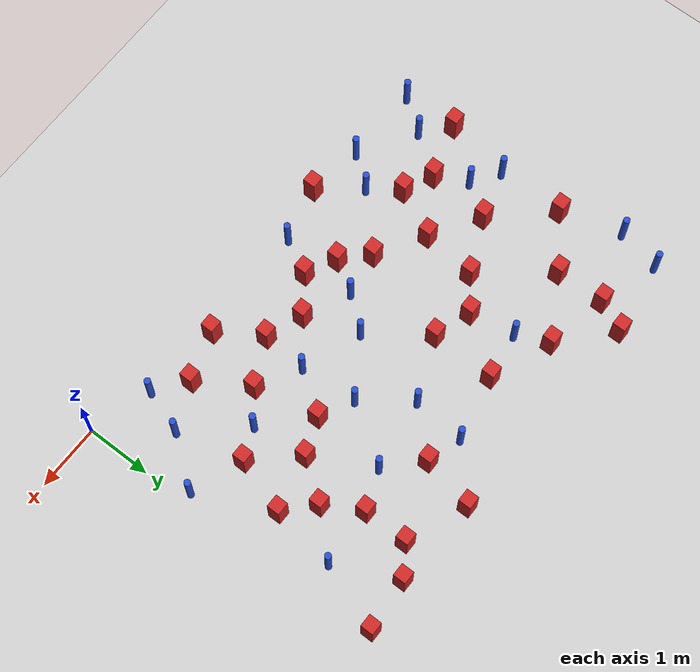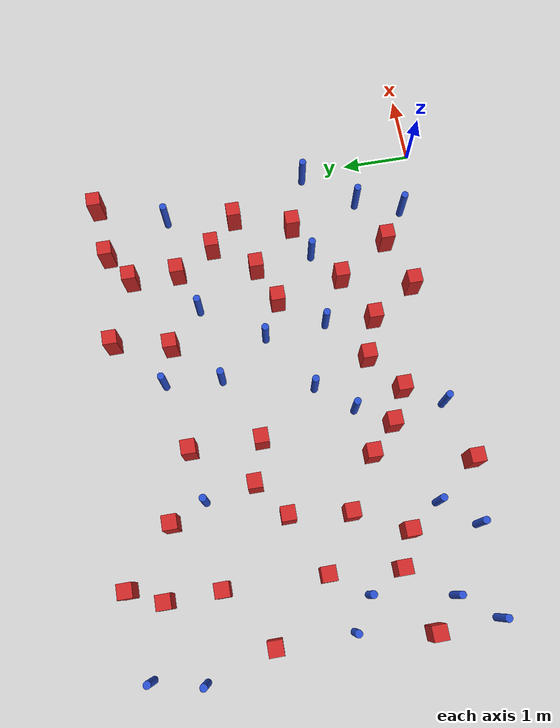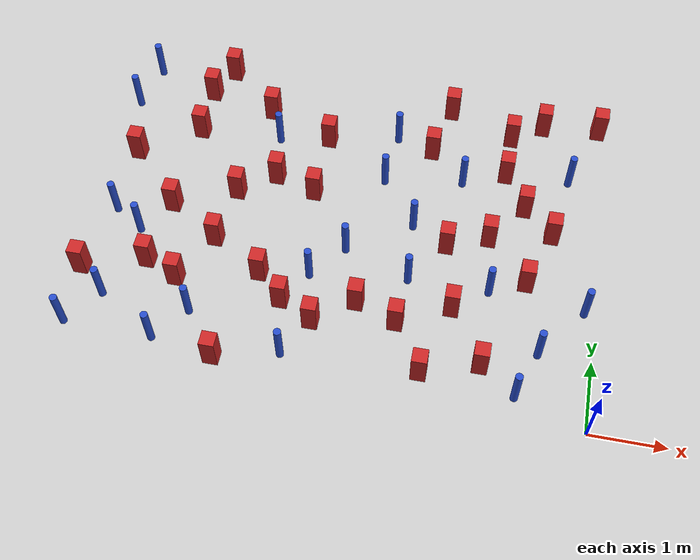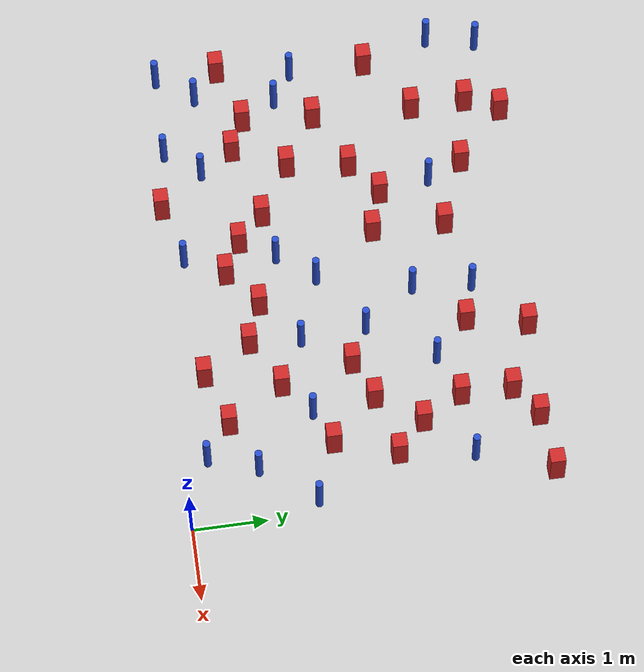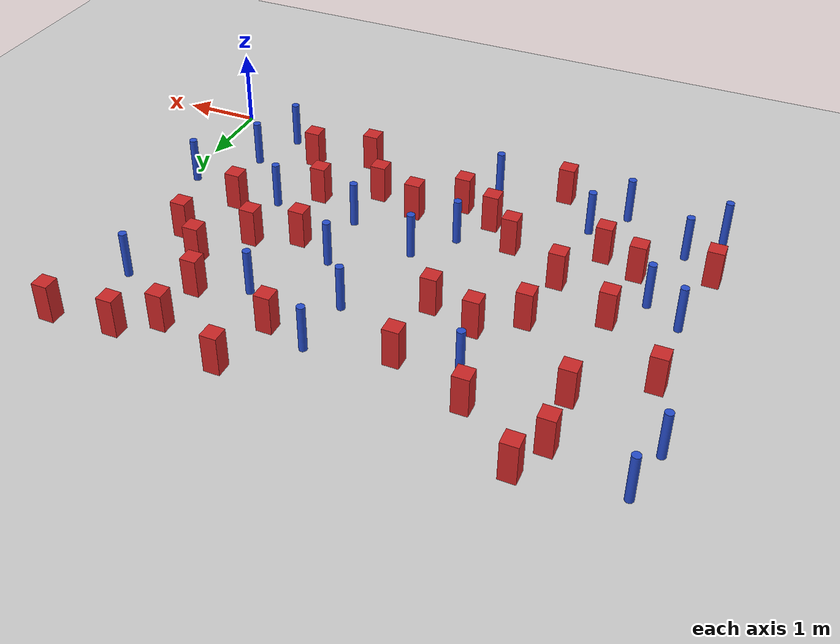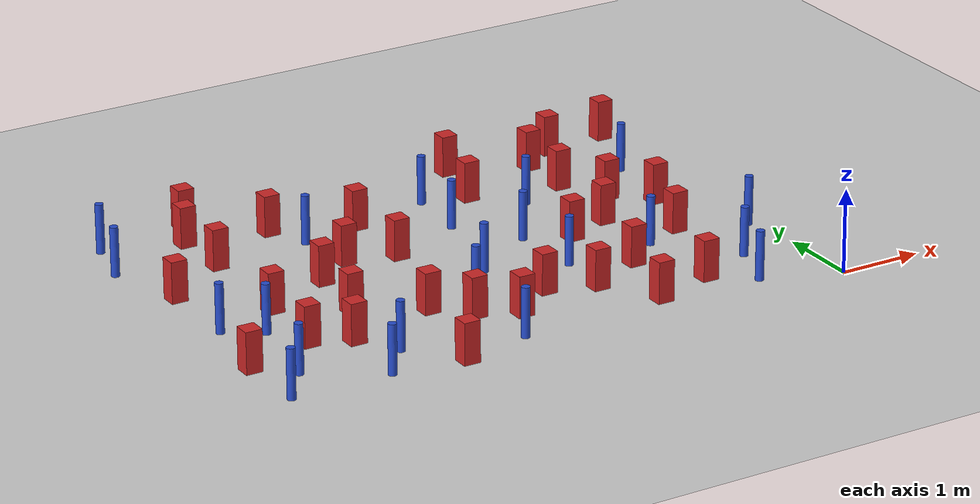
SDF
<sdf version="1.6">
 <world name="default">
  <model name="ground_plane">
   <static>1</static>
   <link name="link">
    <collision name="collision">
     <geometry><plane><normal>0 0 1</normal><size>100 100</size></plane></geometry>
     <surface><friction><ode><mu>100</mu><mu2>50</mu2></ode></friction></surface>
    </collision>
    <visual name="visual">
     <cast_shadows>0</cast_shadows>
     <geometry><plane><normal>0 0 1</normal><size>100 100</size></plane></geometry>
     <material>
      <ambient>1.0 1.0 1.0 1.0</ambient>
      <diffuse>0.8 0.8 0.8 1.0</diffuse>
      <specular>0.01 0.01 0.01 1.000000</specular>
     </material>
    </visual>
   </link>
  </model>
  <model name="square_post_obstacle14">
   <static>true</static>
   <pose>-0.670995625879 2.82150129431 1.91545236811e-07 -7.35059704564e-06 1.12565212e-07 2.39332434364e-05</pose>
   <link name="link">
    <pose>0 0 0.25 0 -0 0</pose>
    <inertial>
     <mass>100</mass>
     <inertia>
      <ixx>0.166667</ixx>
      <ixy>0</ixy>
      <ixz>0</ixz>
      <iyy>0.166667</iyy>
      <iyz>0</iyz>
      <izz>0.166667</izz>
     </inertia>
    </inertial>
    <collision name="collision"><geometry><box><size>.2 .2 .5</size></box></geometry></collision>
    <visual name="visual">
     <geometry><box><size>.2 .2 .5</size></box></geometry>
     <material>
      <script><name>Gazebo/Red</name><uri>file://media/materials/scripts/gazebo.material</uri></script>
     </material>
    </visual>
   </link>
  </model>
  <model name="square_post_obstacle16">
   <static>true</static>
   <pose>-6.71427949328 3.21412606372 1.91545236811e-07 -7.35059704564e-06 1.12565212e-07 2.39332434364e-05</pose>
   <link name="link">
    <pose>0 0 0.25 0 -0 0</pose>
    <inertial>
     <mass>100</mass>
     <inertia>
      <ixx>0.166667</ixx>
      <ixy>0</ixy>
      <ixz>0</ixz>
      <iyy>0.166667</iyy>
      <iyz>0</iyz>
      <izz>0.166667</izz>
     </inertia>
    </inertial>
    <collision name="collision"><geometry><box><size>.2 .2 .5</size></box></geometry></collision>
    <visual name="visual">
     <geometry><box><size>.2 .2 .5</size></box></geometry>
     <material>
      <script><name>Gazebo/Red</name><uri>file://media/materials/scripts/gazebo.material</uri></script>
     </material>
    </visual>
   </link>
  </model>
  <model name="square_post_obstacle20">
   <static>true</static>
   <pose>-0.944631790187 1.99235051984 1.91545236811e-07 -7.35059704564e-06 1.12565212e-07 2.39332434364e-05</pose>
   <link name="link">
    <pose>0 0 0.25 0 -0 0</pose>
    <inertial>
     <mass>100</mass>
     <inertia>
      <ixx>0.166667</ixx>
      <ixy>0</ixy>
      <ixz>0</ixz>
      <iyy>0.166667</iyy>
      <iyz>0</iyz>
      <izz>0.166667</izz>
     </inertia>
    </inertial>
    <collision name="collision"><geometry><box><size>.2 .2 .5</size></box></geometry></collision>
    <visual name="visual">
     <geometry><box><size>.2 .2 .5</size></box></geometry>
     <material>
      <script><name>Gazebo/Red</name><uri>file://media/materials/scripts/gazebo.material</uri></script>
     </material>
    </visual>
   </link>
  </model>
  <model name="square_post_obstacle26">
   <static>true</static>
   <pose>-4.04590051074 2.95804973824 1.91545236811e-07 -7.35059704564e-06 1.12565212e-07 2.39332434364e-05</pose>
   <link name="link">
    <pose>0 0 0.25 0 -0 0</pose>
    <inertial>
     <mass>100</mass>
     <inertia>
      <ixx>0.166667</ixx>
      <ixy>0</ixy>
      <ixz>0</ixz>
      <iyy>0.166667</iyy>
      <iyz>0</iyz>
      <izz>0.166667</izz>
     </inertia>
    </inertial>
    <collision name="collision"><geometry><box><size>.2 .2 .5</size></box></geometry></collision>
    <visual name="visual">
     <geometry><box><size>.2 .2 .5</size></box></geometry>
     <material>
      <script><name>Gazebo/Red</name><uri>file://media/materials/scripts/gazebo.material</uri></script>
     </material>
    </visual>
   </link>
  </model>
  <model name="square_post_obstacle28">
   <static>true</static>
   <pose>-2.56267707125 1.0847858018 1.91545236811e-07 -7.35059704564e-06 1.12565212e-07 2.39332434364e-05</pose>
   <link name="link">
    <pose>0 0 0.25 0 -0 0</pose>
    <inertial>
     <mass>100</mass>
     <inertia>
      <ixx>0.166667</ixx>
      <ixy>0</ixy>
      <ixz>0</ixz>
      <iyy>0.166667</iyy>
      <iyz>0</iyz>
      <izz>0.166667</izz>
     </inertia>
    </inertial>
    <collision name="collision"><geometry><box><size>.2 .2 .5</size></box></geometry></collision>
    <visual name="visual">
     <geometry><box><size>.2 .2 .5</size></box></geometry>
     <material>
      <script><name>Gazebo/Red</name><uri>file://media/materials/scripts/gazebo.material</uri></script>
     </material>
    </visual>
   </link>
  </model>
  <model name="square_post_obstacle31">
   <static>true</static>
   <pose>-4.02735132683 3.94379373212 1.91545236811e-07 -7.35059704564e-06 1.12565212e-07 2.39332434364e-05</pose>
   <link name="link">
    <pose>0 0 0.25 0 -0 0</pose>
    <inertial>
     <mass>100</mass>
     <inertia>
      <ixx>0.166667</ixx>
      <ixy>0</ixy>
      <ixz>0</ixz>
      <iyy>0.166667</iyy>
      <iyz>0</iyz>
      <izz>0.166667</izz>
     </inertia>
    </inertial>
    <collision name="collision"><geometry><box><size>.2 .2 .5</size></box></geometry></collision>
    <visual name="visual">
     <geometry><box><size>.2 .2 .5</size></box></geometry>
     <material>
      <script><name>Gazebo/Red</name><uri>file://media/materials/scripts/gazebo.material</uri></script>
     </material>
    </visual>
   </link>
  </model>
  <model name="pole_obstacle22">
   <static>true</static>
   <pose>-3.10191289753 3.36204805325 7.38925637345e-09 -8.471706928e-08 1.24976765098e-08 -1.74513093016e-07</pose>
   <link name="link">
    <pose>0 0 0.3 0 -0 0</pose>
    <inertial>
     <mass>1</mass>
     <inertia><ixx>0.145833</ixx><ixy>0</ixy><ixz>0</ixz><iyy>0.145833</iyy><iyz>0</iyz><izz>0.125</izz></inertia>
    </inertial>
    <collision name="collision">
     <geometry><cylinder><radius>0.05</radius><length>.6</length></cylinder></geometry>
    </collision>
    <visual name="visual">
     <geometry><cylinder><radius>0.05</radius><length>.6</length></cylinder></geometry>
     <material>
      <script><name>Gazebo/Blue</name><uri>file://media/materials/scripts/gazebo.material</uri></script>
     </material>
    </visual>
   </link>
  </model>
  <model name="square_post_obstacle33">
   <static>true</static>
   <pose>-5.11393979525 2.7762114494 1.91545236811e-07 -7.35059704564e-06 1.12565212e-07 2.39332434364e-05</pose>
   <link name="link">
    <pose>0 0 0.25 0 -0 0</pose>
    <inertial>
     <mass>100</mass>
     <inertia>
      <ixx>0.166667</ixx>
      <ixy>0</ixy>
      <ixz>0</ixz>
      <iyy>0.166667</iyy>
      <iyz>0</iyz>
      <izz>0.166667</izz>
     </inertia>
    </inertial>
    <collision name="collision"><geometry><box><size>.2 .2 .5</size></box></geometry></collision>
    <visual name="visual">
     <geometry><box><size>.2 .2 .5</size></box></geometry>
     <material>
      <script><name>Gazebo/Red</name><uri>file://media/materials/scripts/gazebo.material</uri></script>
     </material>
    </visual>
   </link>
  </model>
  <model name="pole_obstacle38">
   <static>true</static>
   <pose>-3.94372282242 0.37020330207 7.38925637345e-09 -8.471706928e-08 1.24976765172e-08 -1.74513093013e-07</pose>
   <link name="link">
    <pose>0 0 0.3 0 -0 0</pose>
    <inertial>
     <mass>1</mass>
     <inertia><ixx>0.145833</ixx><ixy>0</ixy><ixz>0</ixz><iyy>0.145833</iyy><iyz>0</iyz><izz>0.125</izz></inertia>
    </inertial>
    <collision name="collision">
     <geometry><cylinder><radius>0.05</radius><length>.6</length></cylinder></geometry>
    </collision>
    <visual name="visual">
     <geometry><cylinder><radius>0.05</radius><length>.6</length></cylinder></geometry>
     <material>
      <script><name>Gazebo/Blue</name><uri>file://media/materials/scripts/gazebo.material</uri></script>
     </material>
    </visual>
   </link>
  </model>
  <model name="square_post_obstacle39">
   <static>true</static>
   <pose>-1.8713645981 1.42773617314 1.91545236811e-07 -7.35059704564e-06 1.12565212e-07 2.39332434364e-05</pose>
   <link name="link">
    <pose>0 0 0.25 0 -0 0</pose>
    <inertial>
     <mass>100</mass>
     <inertia>
      <ixx>0.166667</ixx>
      <ixy>0</ixy>
      <ixz>0</ixz>
      <iyy>0.166667</iyy>
      <iyz>0</iyz>
      <izz>0.166667</izz>
     </inertia>
    </inertial>
    <collision name="collision"><geometry><box><size>.2 .2 .5</size></box></geometry></collision>
    <visual name="visual">
     <geometry><box><size>.2 .2 .5</size></box></geometry>
     <material>
      <script><name>Gazebo/Red</name><uri>file://media/materials/scripts/gazebo.material</uri></script>
     </material>
    </visual>
   </link>
  </model>
  <model name="square_post_obstacle53">
   <static>true</static>
   <pose>-4.49114885919 1.50404012208 1.91545236811e-07 -7.35059704564e-06 1.12565212e-07 2.39332434364e-05</pose>
   <link name="link">
    <pose>0 0 0.25 0 -0 0</pose>
    <inertial>
     <mass>100</mass>
     <inertia>
      <ixx>0.166667</ixx>
      <ixy>0</ixy>
      <ixz>0</ixz>
      <iyy>0.166667</iyy>
      <iyz>0</iyz>
      <izz>0.166667</izz>
     </inertia>
    </inertial>
    <collision name="collision"><geometry><box><size>.2 .2 .5</size></box></geometry></collision>
    <visual name="visual">
     <geometry><box><size>.2 .2 .5</size></box></geometry>
     <material>
      <script><name>Gazebo/Red</name><uri>file://media/materials/scripts/gazebo.material</uri></script>
     </material>
    </visual>
   </link>
  </model>
  <model name="pole_obstacle58">
   <static>true</static>
   <pose>-0.923361467312 0.319497947524 7.38925637345e-09 -8.471706928e-08 1.24976765108e-08 -1.74513093015e-07</pose>
   <link name="link">
    <pose>0 0 0.3 0 -0 0</pose>
    <inertial>
     <mass>1</mass>
     <inertia><ixx>0.145833</ixx><ixy>0</ixy><ixz>0</ixz><iyy>0.145833</iyy><iyz>0</iyz><izz>0.125</izz></inertia>
    </inertial>
    <collision name="collision">
     <geometry><cylinder><radius>0.05</radius><length>.6</length></cylinder></geometry>
    </collision>
    <visual name="visual">
     <geometry><cylinder><radius>0.05</radius><length>.6</length></cylinder></geometry>
     <material>
      <script><name>Gazebo/Blue</name><uri>file://media/materials/scripts/gazebo.material</uri></script>
     </material>
    </visual>
   </link>
  </model>
  <model name="pole_obstacle64">
   <static>true</static>
   <pose>-6.84809620091 4.81164250964 7.38925637345e-09 -8.47170692796e-08 1.24976764786e-08 -1.74513093032e-07</pose>
   <link name="link">
    <pose>0 0 0.3 0 -0 0</pose>
    <inertial>
     <mass>1</mass>
     <inertia><ixx>0.145833</ixx><ixy>0</ixy><ixz>0</ixz><iyy>0.145833</iyy><iyz>0</iyz><izz>0.125</izz></inertia>
    </inertial>
    <collision name="collision">
     <geometry><cylinder><radius>0.05</radius><length>.6</length></cylinder></geometry>
    </collision>
    <visual name="visual">
     <geometry><cylinder><radius>0.05</radius><length>.6</length></cylinder></geometry>
     <material>
      <script><name>Gazebo/Blue</name><uri>file://media/materials/scripts/gazebo.material</uri></script>
     </material>
    </visual>
   </link>
  </model>
  <model name="square_post_obstacle67">
   <static>true</static>
   <pose>-5.71629397448 4.97985883816 1.91545236811e-07 -7.35059704564e-06 1.12565212e-07 2.39332434364e-05</pose>
   <link name="link">
    <pose>0 0 0.25 0 -0 0</pose>
    <inertial>
     <mass>100</mass>
     <inertia>
      <ixx>0.166667</ixx>
      <ixy>0</ixy>
      <ixz>0</ixz>
      <iyy>0.166667</iyy>
      <iyz>0</iyz>
      <izz>0.166667</izz>
     </inertia>
    </inertial>
    <collision name="collision"><geometry><box><size>.2 .2 .5</size></box></geometry></collision>
    <visual name="visual">
     <geometry><box><size>.2 .2 .5</size></box></geometry>
     <material>
      <script><name>Gazebo/Red</name><uri>file://media/materials/scripts/gazebo.material</uri></script>
     </material>
    </visual>
   </link>
  </model>
  <model name="square_post_obstacle69">
   <static>true</static>
   <pose>-6.03508316532 1.42734587589 1.91545236811e-07 -7.35059704564e-06 1.12565212e-07 2.39332434364e-05</pose>
   <link name="link">
    <pose>0 0 0.25 0 -0 0</pose>
    <inertial>
     <mass>100</mass>
     <inertia>
      <ixx>0.166667</ixx>
      <ixy>0</ixy>
      <ixz>0</ixz>
      <iyy>0.166667</iyy>
      <iyz>0</iyz>
      <izz>0.166667</izz>
     </inertia>
    </inertial>
    <collision name="collision"><geometry><box><size>.2 .2 .5</size></box></geometry></collision>
    <visual name="visual">
     <geometry><box><size>.2 .2 .5</size></box></geometry>
     <material>
      <script><name>Gazebo/Red</name><uri>file://media/materials/scripts/gazebo.material</uri></script>
     </material>
    </visual>
   </link>
  </model>
  <model name="square_post_obstacle71">
   <static>true</static>
   <pose>-2.50713885559 3.99952925333 1.91545236811e-07 -7.35059704564e-06 1.12565212e-07 2.39332434364e-05</pose>
   <link name="link">
    <pose>0 0 0.25 0 -0 0</pose>
    <inertial>
     <mass>100</mass>
     <inertia>
      <ixx>0.166667</ixx>
      <ixy>0</ixy>
      <ixz>0</ixz>
      <iyy>0.166667</iyy>
      <iyz>0</iyz>
      <izz>0.166667</izz>
     </inertia>
    </inertial>
    <collision name="collision"><geometry><box><size>.2 .2 .5</size></box></geometry></collision>
    <visual name="visual">
     <geometry><box><size>.2 .2 .5</size></box></geometry>
     <material>
      <script><name>Gazebo/Red</name><uri>file://media/materials/scripts/gazebo.material</uri></script>
     </material>
    </visual>
   </link>
  </model>
  <model name="pole_obstacle68">
   <static>true</static>
   <pose>-3.03614454444 4.16152360858 7.38925637345e-09 -8.47170692798e-08 1.24976765033e-08 -1.74513093019e-07</pose>
   <link name="link">
    <pose>0 0 0.3 0 -0 0</pose>
    <inertial>
     <mass>1</mass>
     <inertia><ixx>0.145833</ixx><ixy>0</ixy><ixz>0</ixz><iyy>0.145833</iyy><iyz>0</iyz><izz>0.125</izz></inertia>
    </inertial>
    <collision name="collision">
     <geometry><cylinder><radius>0.05</radius><length>.6</length></cylinder></geometry>
    </collision>
    <visual name="visual">
     <geometry><cylinder><radius>0.05</radius><length>.6</length></cylinder></geometry>
     <material>
      <script><name>Gazebo/Blue</name><uri>file://media/materials/scripts/gazebo.material</uri></script>
     </material>
    </visual>
   </link>
  </model>
  <model name="pole_obstacle78">
   <static>true</static>
   <pose>-6.29026970931 1.90433168616 7.38925637345e-09 -8.471706928e-08 1.24976765134e-08 -1.74513093015e-07</pose>
   <link name="link">
    <pose>0 0 0.3 0 -0 0</pose>
    <inertial>
     <mass>1</mass>
     <inertia><ixx>0.145833</ixx><ixy>0</ixy><ixz>0</ixz><iyy>0.145833</iyy><iyz>0</iyz><izz>0.125</izz></inertia>
    </inertial>
    <collision name="collision">
     <geometry><cylinder><radius>0.05</radius><length>.6</length></cylinder></geometry>
    </collision>
    <visual name="visual">
     <geometry><cylinder><radius>0.05</radius><length>.6</length></cylinder></geometry>
     <material>
      <script><name>Gazebo/Blue</name><uri>file://media/materials/scripts/gazebo.material</uri></script>
     </material>
    </visual>
   </link>
  </model>
  <model name="pole_obstacle80">
   <static>true</static>
   <pose>-2.58050759531 2.65564323262 7.38925637345e-09 -8.47170692798e-08 1.24976764939e-08 -1.74513093025e-07</pose>
   <link name="link">
    <pose>0 0 0.3 0 -0 0</pose>
    <inertial>
     <mass>1</mass>
     <inertia><ixx>0.145833</ixx><ixy>0</ixy><ixz>0</ixz><iyy>0.145833</iyy><iyz>0</iyz><izz>0.125</izz></inertia>
    </inertial>
    <collision name="collision">
     <geometry><cylinder><radius>0.05</radius><length>.6</length></cylinder></geometry>
    </collision>
    <visual name="visual">
     <geometry><cylinder><radius>0.05</radius><length>.6</length></cylinder></geometry>
     <material>
      <script><name>Gazebo/Blue</name><uri>file://media/materials/scripts/gazebo.material</uri></script>
     </material>
    </visual>
   </link>
  </model>
  <model name="pole_obstacle91">
   <static>true</static>
   <pose>-4.74601931427 3.83404386106 7.38925637345e-09 -8.47170692798e-08 1.24976764937e-08 -1.74513093023e-07</pose>
   <link name="link">
    <pose>0 0 0.3 0 -0 0</pose>
    <inertial>
     <mass>1</mass>
     <inertia><ixx>0.145833</ixx><ixy>0</ixy><ixz>0</ixz><iyy>0.145833</iyy><iyz>0</iyz><izz>0.125</izz></inertia>
    </inertial>
    <collision name="collision">
     <geometry><cylinder><radius>0.05</radius><length>.6</length></cylinder></geometry>
    </collision>
    <visual name="visual">
     <geometry><cylinder><radius>0.05</radius><length>.6</length></cylinder></geometry>
     <material>
      <script><name>Gazebo/Blue</name><uri>file://media/materials/scripts/gazebo.material</uri></script>
     </material>
    </visual>
   </link>
  </model>
  <model name="square_post_obstacle84">
   <static>true</static>
   <pose>-0.966748344808 4.73925560637 1.91545236811e-07 -7.35059704564e-06 1.12565212e-07 2.39332434364e-05</pose>
   <link name="link">
    <pose>0 0 0.25 0 -0 0</pose>
    <inertial>
     <mass>100</mass>
     <inertia>
      <ixx>0.166667</ixx>
      <ixy>0</ixy>
      <ixz>0</ixz>
      <iyy>0.166667</iyy>
      <iyz>0</iyz>
      <izz>0.166667</izz>
     </inertia>
    </inertial>
    <collision name="collision"><geometry><box><size>.2 .2 .5</size></box></geometry></collision>
    <visual name="visual">
     <geometry><box><size>.2 .2 .5</size></box></geometry>
     <material>
      <script><name>Gazebo/Red</name><uri>file://media/materials/scripts/gazebo.material</uri></script>
     </material>
    </visual>
   </link>
  </model>
  <model name="square_post_obstacle85">
   <static>true</static>
   <pose>-2.07606853441 2.39872925407 1.91545236811e-07 -7.35059704564e-06 1.12565212e-07 2.39332434364e-05</pose>
   <link name="link">
    <pose>0 0 0.25 0 -0 0</pose>
    <inertial>
     <mass>100</mass>
     <inertia>
      <ixx>0.166667</ixx>
      <ixy>0</ixy>
      <ixz>0</ixz>
      <iyy>0.166667</iyy>
      <iyz>0</iyz>
      <izz>0.166667</izz>
     </inertia>
    </inertial>
    <collision name="collision"><geometry><box><size>.2 .2 .5</size></box></geometry></collision>
    <visual name="visual">
     <geometry><box><size>.2 .2 .5</size></box></geometry>
     <material>
      <script><name>Gazebo/Red</name><uri>file://media/materials/scripts/gazebo.material</uri></script>
     </material>
    </visual>
   </link>
  </model>
  <model name="pole_obstacle99">
   <static>true</static>
   <pose>-5.27071372044 0.765305833916 7.38925637345e-09 -8.47170692799e-08 1.24976765038e-08 -1.74513093018e-07</pose>
   <link name="link">
    <pose>0 0 0.3 0 -0 0</pose>
    <inertial>
     <mass>1</mass>
     <inertia><ixx>0.145833</ixx><ixy>0</ixy><ixz>0</ixz><iyy>0.145833</iyy><iyz>0</iyz><izz>0.125</izz></inertia>
    </inertial>
    <collision name="collision">
     <geometry><cylinder><radius>0.05</radius><length>.6</length></cylinder></geometry>
    </collision>
    <visual name="visual">
     <geometry><cylinder><radius>0.05</radius><length>.6</length></cylinder></geometry>
     <material>
      <script><name>Gazebo/Blue</name><uri>file://media/materials/scripts/gazebo.material</uri></script>
     </material>
    </visual>
   </link>
  </model>
  <model name="pole_obstacle100">
   <static>true</static>
   <pose>-3.82794505445 1.60787172293 7.38925637345e-09 -8.471706928e-08 1.24976765152e-08 -1.74513093012e-07</pose>
   <link name="link">
    <pose>0 0 0.3 0 -0 0</pose>
    <inertial>
     <mass>1</mass>
     <inertia><ixx>0.145833</ixx><ixy>0</ixy><ixz>0</ixz><iyy>0.145833</iyy><iyz>0</iyz><izz>0.125</izz></inertia>
    </inertial>
    <collision name="collision">
     <geometry><cylinder><radius>0.05</radius><length>.6</length></cylinder></geometry>
    </collision>
    <visual name="visual">
     <geometry><cylinder><radius>0.05</radius><length>.6</length></cylinder></geometry>
     <material>
      <script><name>Gazebo/Blue</name><uri>file://media/materials/scripts/gazebo.material</uri></script>
     </material>
    </visual>
   </link>
  </model>
  <model name="square_post_obstacle89">
   <static>true</static>
   <pose>-3.12659571397 1.28999939925 1.91545236811e-07 -7.35059704564e-06 1.12565212e-07 2.39332434364e-05</pose>
   <link name="link">
    <pose>0 0 0.25 0 -0 0</pose>
    <inertial>
     <mass>100</mass>
     <inertia>
      <ixx>0.166667</ixx>
      <ixy>0</ixy>
      <ixz>0</ixz>
      <iyy>0.166667</iyy>
      <iyz>0</iyz>
      <izz>0.166667</izz>
     </inertia>
    </inertial>
    <collision name="collision"><geometry><box><size>.2 .2 .5</size></box></geometry></collision>
    <visual name="visual">
     <geometry><box><size>.2 .2 .5</size></box></geometry>
     <material>
      <script><name>Gazebo/Red</name><uri>file://media/materials/scripts/gazebo.material</uri></script>
     </material>
    </visual>
   </link>
  </model>
  <model name="square_post_obstacle94">
   <static>true</static>
   <pose>-5.93120588765 4.51623306884 1.91545236811e-07 -7.35059704564e-06 1.12565212e-07 2.39332434364e-05</pose>
   <link name="link">
    <pose>0 0 0.25 0 -0 0</pose>
    <inertial>
     <mass>100</mass>
     <inertia>
      <ixx>0.166667</ixx>
      <ixy>0</ixy>
      <ixz>0</ixz>
      <iyy>0.166667</iyy>
      <iyz>0</iyz>
      <izz>0.166667</izz>
     </inertia>
    </inertial>
    <collision name="collision"><geometry><box><size>.2 .2 .5</size></box></geometry></collision>
    <visual name="visual">
     <geometry><box><size>.2 .2 .5</size></box></geometry>
     <material>
      <script><name>Gazebo/Red</name><uri>file://media/materials/scripts/gazebo.material</uri></script>
     </material>
    </visual>
   </link>
  </model>
  <model name="square_post_obstacle95">
   <static>true</static>
   <pose>-1.39952629245 0.669307932106 1.91545236811e-07 -7.35059704564e-06 1.12565212e-07 2.39332434364e-05</pose>
   <link name="link">
    <pose>0 0 0.25 0 -0 0</pose>
    <inertial>
     <mass>100</mass>
     <inertia>
      <ixx>0.166667</ixx>
      <ixy>0</ixy>
      <ixz>0</ixz>
      <iyy>0.166667</iyy>
      <iyz>0</iyz>
      <izz>0.166667</izz>
     </inertia>
    </inertial>
    <collision name="collision"><geometry><box><size>.2 .2 .5</size></box></geometry></collision>
    <visual name="visual">
     <geometry><box><size>.2 .2 .5</size></box></geometry>
     <material>
      <script><name>Gazebo/Red</name><uri>file://media/materials/scripts/gazebo.material</uri></script>
     </material>
    </visual>
   </link>
  </model>
  <model name="pole_obstacle112">
   <static>true</static>
   <pose>-2.00575125048 3.52749417501 7.38925637345e-09 -8.47170692793e-08 1.24976764444e-08 -1.74513093039e-07</pose>
   <link name="link">
    <pose>0 0 0.3 0 -0 0</pose>
    <inertial>
     <mass>1</mass>
     <inertia><ixx>0.145833</ixx><ixy>0</ixy><ixz>0</ixz><iyy>0.145833</iyy><iyz>0</iyz><izz>0.125</izz></inertia>
    </inertial>
    <collision name="collision">
     <geometry><cylinder><radius>0.05</radius><length>.6</length></cylinder></geometry>
    </collision>
    <visual name="visual">
     <geometry><cylinder><radius>0.05</radius><length>.6</length></cylinder></geometry>
     <material>
      <script><name>Gazebo/Blue</name><uri>file://media/materials/scripts/gazebo.material</uri></script>
     </material>
    </visual>
   </link>
  </model>
  <model name="square_post_obstacle100">
   <static>true</static>
   <pose>-0.160737775684 4.81607884977 1.91545236811e-07 -7.35059704564e-06 1.12565212e-07 2.39332434364e-05</pose>
   <link name="link">
    <pose>0 0 0.25 0 -0 0</pose>
    <inertial>
     <mass>100</mass>
     <inertia>
      <ixx>0.166667</ixx>
      <ixy>0</ixy>
      <ixz>0</ixz>
      <iyy>0.166667</iyy>
      <iyz>0</iyz>
      <izz>0.166667</izz>
     </inertia>
    </inertial>
    <collision name="collision"><geometry><box><size>.2 .2 .5</size></box></geometry></collision>
    <visual name="visual">
     <geometry><box><size>.2 .2 .5</size></box></geometry>
     <material>
      <script><name>Gazebo/Red</name><uri>file://media/materials/scripts/gazebo.material</uri></script>
     </material>
    </visual>
   </link>
  </model>
  <model name="pole_obstacle117">
   <static>true</static>
   <pose>-0.142795799494 1.68985432112 7.38925637345e-09 -8.47170692799e-08 1.24976765103e-08 -1.74513093015e-07</pose>
   <link name="link">
    <pose>0 0 0.3 0 -0 0</pose>
    <inertial>
     <mass>1</mass>
     <inertia><ixx>0.145833</ixx><ixy>0</ixy><ixz>0</ixz><iyy>0.145833</iyy><iyz>0</iyz><izz>0.125</izz></inertia>
    </inertial>
    <collision name="collision">
     <geometry><cylinder><radius>0.05</radius><length>.6</length></cylinder></geometry>
    </collision>
    <visual name="visual">
     <geometry><cylinder><radius>0.05</radius><length>.6</length></cylinder></geometry>
     <material>
      <script><name>Gazebo/Blue</name><uri>file://media/materials/scripts/gazebo.material</uri></script>
     </material>
    </visual>
   </link>
  </model>
  <model name="square_post_obstacle111">
   <static>true</static>
   <pose>-5.94951007171 2.39642612791 1.91545236811e-07 -7.35059704564e-06 1.12565212e-07 2.39332434364e-05</pose>
   <link name="link">
    <pose>0 0 0.25 0 -0 0</pose>
    <inertial>
     <mass>100</mass>
     <inertia>
      <ixx>0.166667</ixx>
      <ixy>0</ixy>
      <ixz>0</ixz>
      <iyy>0.166667</iyy>
      <iyz>0</iyz>
      <izz>0.166667</izz>
     </inertia>
    </inertial>
    <collision name="collision"><geometry><box><size>.2 .2 .5</size></box></geometry></collision>
    <visual name="visual">
     <geometry><box><size>.2 .2 .5</size></box></geometry>
     <material>
      <script><name>Gazebo/Red</name><uri>file://media/materials/scripts/gazebo.material</uri></script>
     </material>
    </visual>
   </link>
  </model>
  <model name="square_post_obstacle112">
   <static>true</static>
   <pose>-1.41021117491 3.75921893836 1.91545236811e-07 -7.35059704564e-06 1.12565212e-07 2.39332434364e-05</pose>
   <link name="link">
    <pose>0 0 0.25 0 -0 0</pose>
    <inertial>
     <mass>100</mass>
     <inertia>
      <ixx>0.166667</ixx>
      <ixy>0</ixy>
      <ixz>0</ixz>
      <iyy>0.166667</iyy>
      <iyz>0</iyz>
      <izz>0.166667</izz>
     </inertia>
    </inertial>
    <collision name="collision"><geometry><box><size>.2 .2 .5</size></box></geometry></collision>
    <visual name="visual">
     <geometry><box><size>.2 .2 .5</size></box></geometry>
     <material>
      <script><name>Gazebo/Red</name><uri>file://media/materials/scripts/gazebo.material</uri></script>
     </material>
    </visual>
   </link>
  </model>
  <model name="square_post_obstacle113">
   <static>true</static>
   <pose>-2.15068013638 0.430706105954 1.91545236811e-07 -7.35059704564e-06 1.12565212e-07 2.39332434364e-05</pose>
   <link name="link">
    <pose>0 0 0.25 0 -0 0</pose>
    <inertial>
     <mass>100</mass>
     <inertia>
      <ixx>0.166667</ixx>
      <ixy>0</ixy>
      <ixz>0</ixz>
      <iyy>0.166667</iyy>
      <iyz>0</iyz>
      <izz>0.166667</izz>
     </inertia>
    </inertial>
    <collision name="collision"><geometry><box><size>.2 .2 .5</size></box></geometry></collision>
    <visual name="visual">
     <geometry><box><size>.2 .2 .5</size></box></geometry>
     <material>
      <script><name>Gazebo/Red</name><uri>file://media/materials/scripts/gazebo.material</uri></script>
     </material>
    </visual>
   </link>
  </model>
  <model name="pole_obstacle137">
   <static>true</static>
   <pose>-3.4250993603 2.1020666981 7.38925637345e-09 -8.47170692798e-08 1.24976764939e-08 -1.74513093025e-07</pose>
   <link name="link">
    <pose>0 0 0.3 0 -0 0</pose>
    <inertial>
     <mass>1</mass>
     <inertia><ixx>0.145833</ixx><ixy>0</ixy><ixz>0</ixz><iyy>0.145833</iyy><iyz>0</iyz><izz>0.125</izz></inertia>
    </inertial>
    <collision name="collision">
     <geometry><cylinder><radius>0.05</radius><length>.6</length></cylinder></geometry>
    </collision>
    <visual name="visual">
     <geometry><cylinder><radius>0.05</radius><length>.6</length></cylinder></geometry>
     <material>
      <script><name>Gazebo/Blue</name><uri>file://media/materials/scripts/gazebo.material</uri></script>
     </material>
    </visual>
   </link>
  </model>
  <model name="square_post_obstacle129">
   <static>true</static>
   <pose>-5.91220937182 3.76842000382 1.91545236811e-07 -7.35059704564e-06 1.12565212e-07 2.39332434364e-05</pose>
   <link name="link">
    <pose>0 0 0.25 0 -0 0</pose>
    <inertial>
     <mass>100</mass>
     <inertia>
      <ixx>0.166667</ixx>
      <ixy>0</ixy>
      <ixz>0</ixz>
      <iyy>0.166667</iyy>
      <iyz>0</iyz>
      <izz>0.166667</izz>
     </inertia>
    </inertial>
    <collision name="collision"><geometry><box><size>.2 .2 .5</size></box></geometry></collision>
    <visual name="visual">
     <geometry><box><size>.2 .2 .5</size></box></geometry>
     <material>
      <script><name>Gazebo/Red</name><uri>file://media/materials/scripts/gazebo.material</uri></script>
     </material>
    </visual>
   </link>
  </model>
  <model name="pole_obstacle143">
   <static>true</static>
   <pose>-6.84950679031 0.318583858324 7.38925637345e-09 -8.47170692798e-08 1.24976765003e-08 -1.7451309302e-07</pose>
   <link name="link">
    <pose>0 0 0.3 0 -0 0</pose>
    <inertial>
     <mass>1</mass>
     <inertia><ixx>0.145833</ixx><ixy>0</ixy><ixz>0</ixz><iyy>0.145833</iyy><iyz>0</iyz><izz>0.125</izz></inertia>
    </inertial>
    <collision name="collision">
     <geometry><cylinder><radius>0.05</radius><length>.6</length></cylinder></geometry>
    </collision>
    <visual name="visual">
     <geometry><cylinder><radius>0.05</radius><length>.6</length></cylinder></geometry>
     <material>
      <script><name>Gazebo/Blue</name><uri>file://media/materials/scripts/gazebo.material</uri></script>
     </material>
    </visual>
   </link>
  </model>
  <model name="square_post_obstacle135">
   <static>true</static>
   <pose>-3.65596049966 0.905343850047 1.91545236811e-07 -7.35059704564e-06 1.12565212e-07 2.39332434364e-05</pose>
   <link name="link">
    <pose>0 0 0.25 0 -0 0</pose>
    <inertial>
     <mass>100</mass>
     <inertia>
      <ixx>0.166667</ixx>
      <ixy>0</ixy>
      <ixz>0</ixz>
      <iyy>0.166667</iyy>
      <iyz>0</iyz>
      <izz>0.166667</izz>
     </inertia>
    </inertial>
    <collision name="collision"><geometry><box><size>.2 .2 .5</size></box></geometry></collision>
    <visual name="visual">
     <geometry><box><size>.2 .2 .5</size></box></geometry>
     <material>
      <script><name>Gazebo/Red</name><uri>file://media/materials/scripts/gazebo.material</uri></script>
     </material>
    </visual>
   </link>
  </model>
  <model name="square_post_obstacle137">
   <static>true</static>
   <pose>-1.40348301218 4.44484459799 1.91545236811e-07 -7.35059704564e-06 1.12565212e-07 2.39332434364e-05</pose>
   <link name="link">
    <pose>0 0 0.25 0 -0 0</pose>
    <inertial>
     <mass>100</mass>
     <inertia>
      <ixx>0.166667</ixx>
      <ixy>0</ixy>
      <ixz>0</ixz>
      <iyy>0.166667</iyy>
      <iyz>0</iyz>
      <izz>0.166667</izz>
     </inertia>
    </inertial>
    <collision name="collision"><geometry><box><size>.2 .2 .5</size></box></geometry></collision>
    <visual name="visual">
     <geometry><box><size>.2 .2 .5</size></box></geometry>
     <material>
      <script><name>Gazebo/Red</name><uri>file://media/materials/scripts/gazebo.material</uri></script>
     </material>
    </visual>
   </link>
  </model>
  <model name="square_post_obstacle156">
   <static>true</static>
   <pose>-6.8813820059 1.16983313058 1.91545236811e-07 -7.35059704564e-06 1.12565212e-07 2.39332434364e-05</pose>
   <link name="link">
    <pose>0 0 0.25 0 -0 0</pose>
    <inertial>
     <mass>100</mass>
     <inertia>
      <ixx>0.166667</ixx>
      <ixy>0</ixy>
      <ixz>0</ixz>
      <iyy>0.166667</iyy>
      <iyz>0</iyz>
      <izz>0.166667</izz>
     </inertia>
    </inertial>
    <collision name="collision"><geometry><box><size>.2 .2 .5</size></box></geometry></collision>
    <visual name="visual">
     <geometry><box><size>.2 .2 .5</size></box></geometry>
     <material>
      <script><name>Gazebo/Red</name><uri>file://media/materials/scripts/gazebo.material</uri></script>
     </material>
    </visual>
   </link>
  </model>
  <model name="square_post_obstacle160">
   <static>true</static>
   <pose>-2.32651336169 4.80814663718 1.91545236811e-07 -7.35059704564e-06 1.12565212e-07 2.39332434364e-05</pose>
   <link name="link">
    <pose>0 0 0.25 0 -0 0</pose>
    <inertial>
     <mass>100</mass>
     <inertia>
      <ixx>0.166667</ixx>
      <ixy>0</ixy>
      <ixz>0</ixz>
      <iyy>0.166667</iyy>
      <iyz>0</iyz>
      <izz>0.166667</izz>
     </inertia>
    </inertial>
    <collision name="collision"><geometry><box><size>.2 .2 .5</size></box></geometry></collision>
    <visual name="visual">
     <geometry><box><size>.2 .2 .5</size></box></geometry>
     <material>
      <script><name>Gazebo/Red</name><uri>file://media/materials/scripts/gazebo.material</uri></script>
     </material>
    </visual>
   </link>
  </model>
  <model name="pole_obstacle171">
   <static>true</static>
   <pose>-6.71253675918 2.17907280174 7.38925637345e-09 -8.47170692798e-08 1.24976764937e-08 -1.74513093023e-07</pose>
   <link name="link">
    <pose>0 0 0.3 0 -0 0</pose>
    <inertial>
     <mass>1</mass>
     <inertia><ixx>0.145833</ixx><ixy>0</ixy><ixz>0</ixz><iyy>0.145833</iyy><iyz>0</iyz><izz>0.125</izz></inertia>
    </inertial>
    <collision name="collision">
     <geometry><cylinder><radius>0.05</radius><length>.6</length></cylinder></geometry>
    </collision>
    <visual name="visual">
     <geometry><cylinder><radius>0.05</radius><length>.6</length></cylinder></geometry>
     <material>
      <script><name>Gazebo/Blue</name><uri>file://media/materials/scripts/gazebo.material</uri></script>
     </material>
    </visual>
   </link>
  </model>
  <model name="pole_obstacle174">
   <static>true</static>
   <pose>-0.688351707493 0.971337967614 7.38925637345e-09 -8.47170692798e-08 1.24976764946e-08 -1.74513093024e-07</pose>
   <link name="link">
    <pose>0 0 0.3 0 -0 0</pose>
    <inertial>
     <mass>1</mass>
     <inertia><ixx>0.145833</ixx><ixy>0</ixy><ixz>0</ixz><iyy>0.145833</iyy><iyz>0</iyz><izz>0.125</izz></inertia>
    </inertial>
    <collision name="collision">
     <geometry><cylinder><radius>0.05</radius><length>.6</length></cylinder></geometry>
    </collision>
    <visual name="visual">
     <geometry><cylinder><radius>0.05</radius><length>.6</length></cylinder></geometry>
     <material>
      <script><name>Gazebo/Blue</name><uri>file://media/materials/scripts/gazebo.material</uri></script>
     </material>
    </visual>
   </link>
  </model>
  <model name="pole_obstacle186">
   <static>true</static>
   <pose>-0.51704876947 3.81314840892 7.38925637345e-09 -8.47170692799e-08 1.24976765084e-08 -1.74513093016e-07</pose>
   <link name="link">
    <pose>0 0 0.3 0 -0 0</pose>
    <inertial>
     <mass>1</mass>
     <inertia><ixx>0.145833</ixx><ixy>0</ixy><ixz>0</ixz><iyy>0.145833</iyy><iyz>0</iyz><izz>0.125</izz></inertia>
    </inertial>
    <collision name="collision">
     <geometry><cylinder><radius>0.05</radius><length>.6</length></cylinder></geometry>
    </collision>
    <visual name="visual">
     <geometry><cylinder><radius>0.05</radius><length>.6</length></cylinder></geometry>
     <material>
      <script><name>Gazebo/Blue</name><uri>file://media/materials/scripts/gazebo.material</uri></script>
     </material>
    </visual>
   </link>
  </model>
  <model name="square_post_obstacle179">
   <static>true</static>
   <pose>-5.57643117136 1.2233453048 1.91545236811e-07 -7.35059704564e-06 1.12565212e-07 2.39332434364e-05</pose>
   <link name="link">
    <pose>0 0 0.25 0 -0 0</pose>
    <inertial>
     <mass>100</mass>
     <inertia>
      <ixx>0.166667</ixx>
      <ixy>0</ixy>
      <ixz>0</ixz>
      <iyy>0.166667</iyy>
      <iyz>0</iyz>
      <izz>0.166667</izz>
     </inertia>
    </inertial>
    <collision name="collision"><geometry><box><size>.2 .2 .5</size></box></geometry></collision>
    <visual name="visual">
     <geometry><box><size>.2 .2 .5</size></box></geometry>
     <material>
      <script><name>Gazebo/Red</name><uri>file://media/materials/scripts/gazebo.material</uri></script>
     </material>
    </visual>
   </link>
  </model>
  <model name="square_post_obstacle181">
   <static>true</static>
   <pose>-4.62551942184 3.14014618937 1.91545236811e-07 -7.35059704564e-06 1.12565212e-07 2.39332434364e-05</pose>
   <link name="link">
    <pose>0 0 0.25 0 -0 0</pose>
    <inertial>
     <mass>100</mass>
     <inertia>
      <ixx>0.166667</ixx>
      <ixy>0</ixy>
      <ixz>0</ixz>
      <iyy>0.166667</iyy>
      <iyz>0</iyz>
      <izz>0.166667</izz>
     </inertia>
    </inertial>
    <collision name="collision"><geometry><box><size>.2 .2 .5</size></box></geometry></collision>
    <visual name="visual">
     <geometry><box><size>.2 .2 .5</size></box></geometry>
     <material>
      <script><name>Gazebo/Red</name><uri>file://media/materials/scripts/gazebo.material</uri></script>
     </material>
    </visual>
   </link>
  </model>
  <model name="pole_obstacle191">
   <static>true</static>
   <pose>-2.51018017406 1.77485035943 7.38925637345e-09 -8.471706928e-08 1.24976765152e-08 -1.74513093012e-07</pose>
   <link name="link">
    <pose>0 0 0.3 0 -0 0</pose>
    <inertial>
     <mass>1</mass>
     <inertia><ixx>0.145833</ixx><ixy>0</ixy><ixz>0</ixz><iyy>0.145833</iyy><iyz>0</iyz><izz>0.125</izz></inertia>
    </inertial>
    <collision name="collision">
     <geometry><cylinder><radius>0.05</radius><length>.6</length></cylinder></geometry>
    </collision>
    <visual name="visual">
     <geometry><cylinder><radius>0.05</radius><length>.6</length></cylinder></geometry>
     <material>
      <script><name>Gazebo/Blue</name><uri>file://media/materials/scripts/gazebo.material</uri></script>
     </material>
    </visual>
   </link>
  </model>
  <model name="square_post_obstacle188">
   <static>true</static>
   <pose>-4.79090561526 0.166788126587 1.91545236811e-07 -7.35059704564e-06 1.12565212e-07 2.39332434364e-05</pose>
   <link name="link">
    <pose>0 0 0.25 0 -0 0</pose>
    <inertial>
     <mass>100</mass>
     <inertia>
      <ixx>0.166667</ixx>
      <ixy>0</ixy>
      <ixz>0</ixz>
      <iyy>0.166667</iyy>
      <iyz>0</iyz>
      <izz>0.166667</izz>
     </inertia>
    </inertial>
    <collision name="collision"><geometry><box><size>.2 .2 .5</size></box></geometry></collision>
    <visual name="visual">
     <geometry><box><size>.2 .2 .5</size></box></geometry>
     <material>
      <script><name>Gazebo/Red</name><uri>file://media/materials/scripts/gazebo.material</uri></script>
     </material>
    </visual>
   </link>
  </model>
  <model name="pole_obstacle196">
   <static>true</static>
   <pose>-6.99607975938 4.14354346816 7.38925637345e-09 -8.47170692796e-08 1.24976764786e-08 -1.74513093032e-07</pose>
   <link name="link">
    <pose>0 0 0.3 0 -0 0</pose>
    <inertial>
     <mass>1</mass>
     <inertia><ixx>0.145833</ixx><ixy>0</ixy><ixz>0</ixz><iyy>0.145833</iyy><iyz>0</iyz><izz>0.125</izz></inertia>
    </inertial>
    <collision name="collision">
     <geometry><cylinder><radius>0.05</radius><length>.6</length></cylinder></geometry>
    </collision>
    <visual name="visual">
     <geometry><cylinder><radius>0.05</radius><length>.6</length></cylinder></geometry>
     <material>
      <script><name>Gazebo/Blue</name><uri>file://media/materials/scripts/gazebo.material</uri></script>
     </material>
    </visual>
   </link>
  </model>
  <model name="square_post_obstacle191">
   <static>true</static>
   <pose>-5.21753393772 1.93868736329 1.91545236811e-07 -7.35059704564e-06 1.12565212e-07 2.39332434364e-05</pose>
   <link name="link">
    <pose>0 0 0.25 0 -0 0</pose>
    <inertial>
     <mass>100</mass>
     <inertia>
      <ixx>0.166667</ixx>
      <ixy>0</ixy>
      <ixz>0</ixz>
      <iyy>0.166667</iyy>
      <iyz>0</iyz>
      <izz>0.166667</izz>
     </inertia>
    </inertial>
    <collision name="collision"><geometry><box><size>.2 .2 .5</size></box></geometry></collision>
    <visual name="visual">
     <geometry><box><size>.2 .2 .5</size></box></geometry>
     <material>
      <script><name>Gazebo/Red</name><uri>file://media/materials/scripts/gazebo.material</uri></script>
     </material>
    </visual>
   </link>
  </model>
  <model name="square_post_obstacle193">
   <static>true</static>
   <pose>-4.96558522566 4.3138952665 1.91545236811e-07 -7.35059704564e-06 1.12565212e-07 2.39332434364e-05</pose>
   <link name="link">
    <pose>0 0 0.25 0 -0 0</pose>
    <inertial>
     <mass>100</mass>
     <inertia>
      <ixx>0.166667</ixx>
      <ixy>0</ixy>
      <ixz>0</ixz>
      <iyy>0.166667</iyy>
      <iyz>0</iyz>
      <izz>0.166667</izz>
     </inertia>
    </inertial>
    <collision name="collision"><geometry><box><size>.2 .2 .5</size></box></geometry></collision>
    <visual name="visual">
     <geometry><box><size>.2 .2 .5</size></box></geometry>
     <material>
      <script><name>Gazebo/Red</name><uri>file://media/materials/scripts/gazebo.material</uri></script>
     </material>
    </visual>
   </link>
  </model>
  <model name="square_post_obstacle195">
   <static>true</static>
   <pose>-1.51936628363 2.61919446548 1.91545236811e-07 -7.35059704564e-06 1.12565212e-07 2.39332434364e-05</pose>
   <link name="link">
    <pose>0 0 0.25 0 -0 0</pose>
    <inertial>
     <mass>100</mass>
     <inertia>
      <ixx>0.166667</ixx>
      <ixy>0</ixy>
      <ixz>0</ixz>
      <iyy>0.166667</iyy>
      <iyz>0</iyz>
      <izz>0.166667</izz>
     </inertia>
    </inertial>
    <collision name="collision"><geometry><box><size>.2 .2 .5</size></box></geometry></collision>
    <visual name="visual">
     <geometry><box><size>.2 .2 .5</size></box></geometry>
     <material>
      <script><name>Gazebo/Red</name><uri>file://media/materials/scripts/gazebo.material</uri></script>
     </material>
    </visual>
   </link>
  </model>
  <model name="pole_obstacle201">
   <static>true</static>
   <pose>-6.48251670987 0.815646410024 7.38925637345e-09 -8.47170692799e-08 1.24976765038e-08 -1.74513093018e-07</pose>
   <link name="link">
    <pose>0 0 0.3 0 -0 0</pose>
    <inertial>
     <mass>1</mass>
     <inertia><ixx>0.145833</ixx><ixy>0</ixy><ixz>0</ixz><iyy>0.145833</iyy><iyz>0</iyz><izz>0.125</izz></inertia>
    </inertial>
    <collision name="collision">
     <geometry><cylinder><radius>0.05</radius><length>.6</length></cylinder></geometry>
    </collision>
    <visual name="visual">
     <geometry><cylinder><radius>0.05</radius><length>.6</length></cylinder></geometry>
     <material>
      <script><name>Gazebo/Blue</name><uri>file://media/materials/scripts/gazebo.material</uri></script>
     </material>
    </visual>
   </link>
  </model>
  <model name="square_post_obstacle198">
   <static>true</static>
   <pose>-4.11626163742 1.14089894724 1.91545236811e-07 -7.35059704564e-06 1.12565212e-07 2.39332434364e-05</pose>
   <link name="link">
    <pose>0 0 0.25 0 -0 0</pose>
    <inertial>
     <mass>100</mass>
     <inertia>
      <ixx>0.166667</ixx>
      <ixy>0</ixy>
      <ixz>0</ixz>
      <iyy>0.166667</iyy>
      <iyz>0</iyz>
      <izz>0.166667</izz>
     </inertia>
    </inertial>
    <collision name="collision"><geometry><box><size>.2 .2 .5</size></box></geometry></collision>
    <visual name="visual">
     <geometry><box><size>.2 .2 .5</size></box></geometry>
     <material>
      <script><name>Gazebo/Red</name><uri>file://media/materials/scripts/gazebo.material</uri></script>
     </material>
    </visual>
   </link>
  </model>
  <model name="square_post_obstacle212">
   <static>true</static>
   <pose>-1.09080846645 3.20784712976 1.91545236811e-07 -7.35059704564e-06 1.12565212e-07 2.39332434364e-05</pose>
   <link name="link">
    <pose>0 0 0.25 0 -0 0</pose>
    <inertial>
     <mass>100</mass>
     <inertia>
      <ixx>0.166667</ixx>
      <ixy>0</ixy>
      <ixz>0</ixz>
      <iyy>0.166667</iyy>
      <iyz>0</iyz>
      <izz>0.166667</izz>
     </inertia>
    </inertial>
    <collision name="collision"><geometry><box><size>.2 .2 .5</size></box></geometry></collision>
    <visual name="visual">
     <geometry><box><size>.2 .2 .5</size></box></geometry>
     <material>
      <script><name>Gazebo/Red</name><uri>file://media/materials/scripts/gazebo.material</uri></script>
     </material>
    </visual>
   </link>
  </model>
  <model name="pole_obstacle216">
   <static>true</static>
   <pose>-1.41825999043 1.78341002078 7.38925637345e-09 -8.471706928e-08 1.24976765079e-08 -1.74513093017e-07</pose>
   <link name="link">
    <pose>0 0 0.3 0 -0 0</pose>
    <inertial>
     <mass>1</mass>
     <inertia><ixx>0.145833</ixx><ixy>0</ixy><ixz>0</ixz><iyy>0.145833</iyy><iyz>0</iyz><izz>0.125</izz></inertia>
    </inertial>
    <collision name="collision">
     <geometry><cylinder><radius>0.05</radius><length>.6</length></cylinder></geometry>
    </collision>
    <visual name="visual">
     <geometry><cylinder><radius>0.05</radius><length>.6</length></cylinder></geometry>
     <material>
      <script><name>Gazebo/Blue</name><uri>file://media/materials/scripts/gazebo.material</uri></script>
     </material>
    </visual>
   </link>
  </model>
  <model name="pole_obstacle220">
   <static>true</static>
   <pose>-5.64344999043 0.294743020781 7.38925637345e-09 -8.47170692799e-08 1.24976765028e-08 -1.74513093019e-07</pose>
   <link name="link">
    <pose>0 0 0.3 0 -0 0</pose>
    <inertial>
     <mass>1</mass>
     <inertia><ixx>0.145833</ixx><ixy>0</ixy><ixz>0</ixz><iyy>0.145833</iyy><iyz>0</iyz><izz>0.125</izz></inertia>
    </inertial>
    <collision name="collision">
     <geometry><cylinder><radius>0.05</radius><length>.6</length></cylinder></geometry>
    </collision>
    <visual name="visual">
     <geometry><cylinder><radius>0.05</radius><length>.6</length></cylinder></geometry>
     <material>
      <script><name>Gazebo/Blue</name><uri>file://media/materials/scripts/gazebo.material</uri></script>
     </material>
    </visual>
   </link>
  </model>
 </world>
</sdf>
